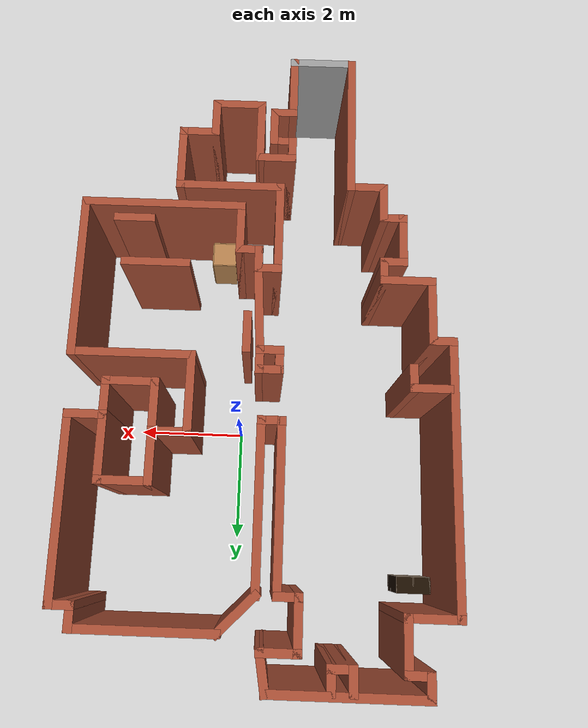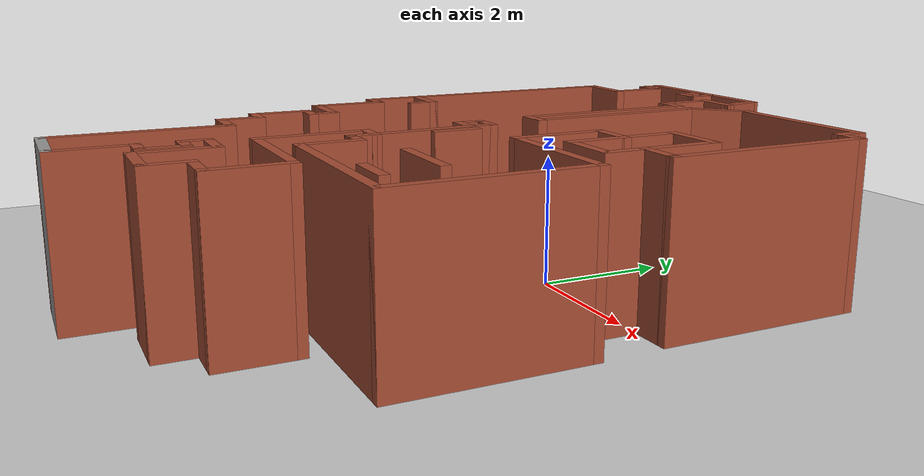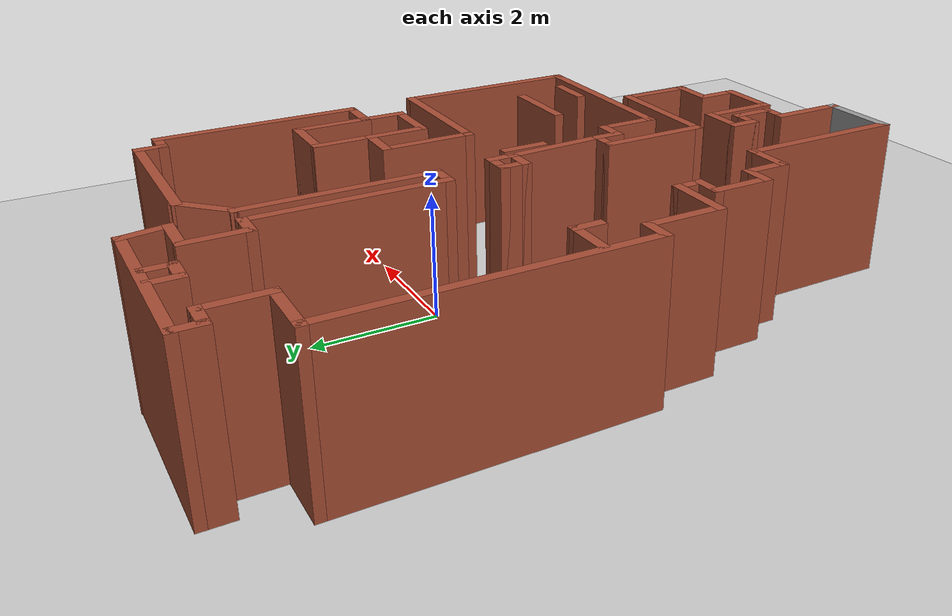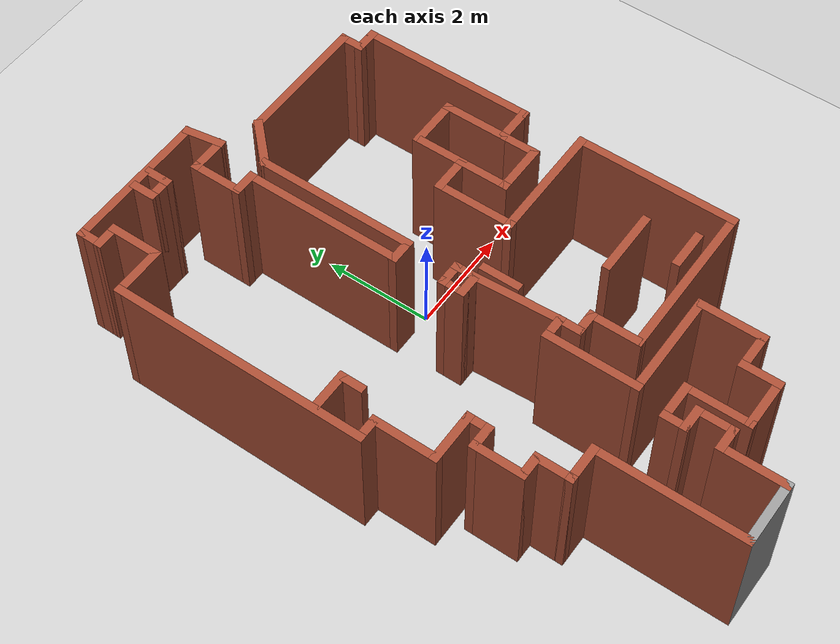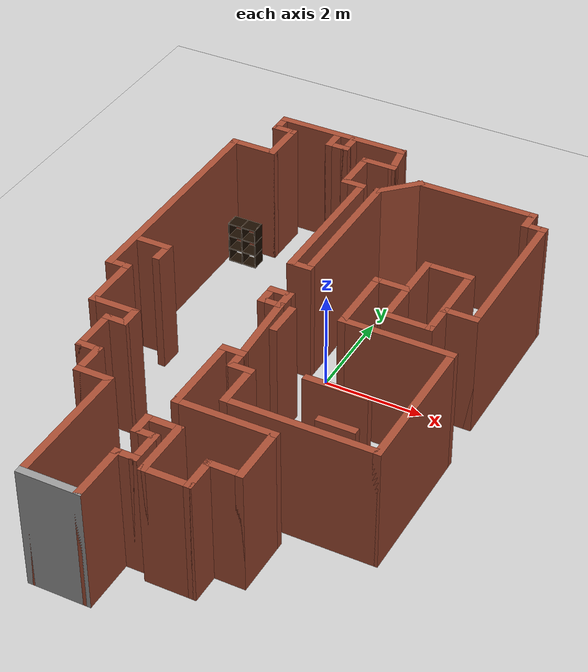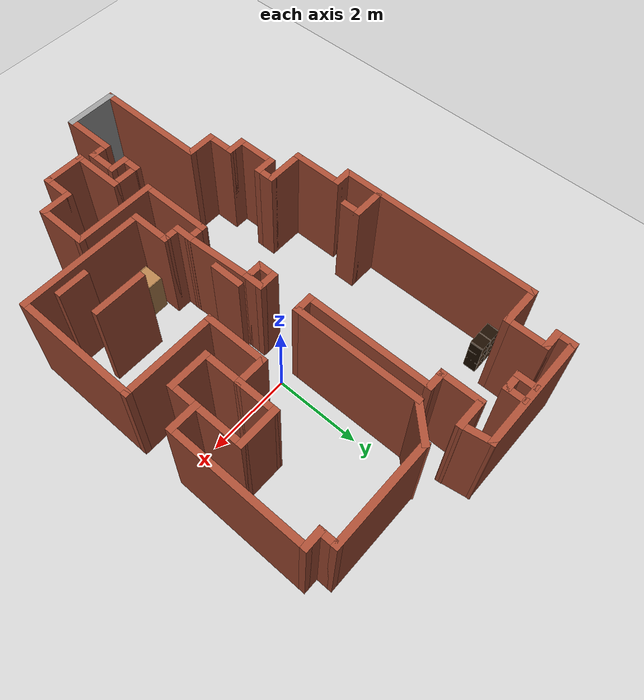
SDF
<sdf version="1.6">
 <world name="default">
  <light name="sun" type="directional">
   <pose>0 0 10 0 -0 0</pose>
   <diffuse>0.8 0.8 0.8 1</diffuse>
   <specular>0.2 0.2 0.2 1</specular>
   <attenuation>
    <range>1000</range>
    <constant>0.9</constant>
    <linear>0.01</linear>
    <quadratic>0.001</quadratic>
   </attenuation>
   <direction>-0.5 0.1 -0.9</direction>
  </light>
  <model name="ground_plane">
   <static>1</static>
   <link name="link">
    <collision name="collision">
     <geometry><plane><normal>0 0 1</normal><size>100 100</size></plane></geometry>
     <surface>
      <contact><collide_bitmask>65535</collide_bitmask></contact>
      <friction><ode><mu>100</mu><mu2>50</mu2></ode></friction>
     </surface>
    </collision>
    <visual name="visual">
     <cast_shadows>0</cast_shadows>
     <geometry><plane><normal>0 0 1</normal><size>100 100</size></plane></geometry>
     <material>
      <script><uri>file://media/materials/scripts/gazebo.material</uri><name>Gazebo/Grey</name></script>
     </material>
    </visual>
   </link>
  </model>
  <gravity>0 0 -9.8</gravity>
  <magnetic_field>6e-06 2.3e-05 -4.2e-05</magnetic_field>
  <atmosphere type="adiabatic"/>
  <physics name="default_physics" default="0" type="ode">
   <max_step_size>0.001</max_step_size>
   <real_time_factor>1</real_time_factor>
   <real_time_update_rate>1000</real_time_update_rate>
  </physics>
  <scene><ambient>0.4 0.4 0.4 1</ambient><background>0.7 0.7 0.7 1</background><shadows>1</shadows></scene>
  <audio><device>default</device></audio>
  <spherical_coordinates>
   <surface_model>EARTH_WGS84</surface_model>
   <latitude_deg>0</latitude_deg>
   <longitude_deg>0</longitude_deg>
   <elevation>0</elevation>
   <heading_deg>0</heading_deg>
  </spherical_coordinates>
  <model name="map_38">
   <pose>-0.37762 -1.26355 0 0 -0 0</pose>
   <link name="Wall_0">
    <collision name="Wall_0_Collision">
     <geometry><box><size>2.75 0.15 2.5</size></box></geometry>
     <pose>0 0 1.25 0 -0 0</pose>
    </collision>
    <visual name="Wall_0_Visual">
     <pose>0 0 1.25 0 -0 0</pose>
     <geometry><box><size>2.75 0.15 2.5</size></box></geometry>
     <material>
      <script><uri>file://media/materials/scripts/gazebo.material</uri><name>Gazebo/Bricks</name></script>
      <ambient>1 1 1 1</ambient>
     </material>
     <meta><layer>0</layer></meta>
    </visual>
    <pose>-1.525 5.64441 0 0 -0 3.14159</pose>
   </link>
   <link name="Wall_1">
    <collision name="Wall_1_Collision">
     <geometry><box><size>0.5 0.15 2.5</size></box></geometry>
     <pose>0 0 1.25 0 -0 0</pose>
    </collision>
    <visual name="Wall_1_Visual">
     <pose>0 0 1.25 0 -0 0</pose>
     <geometry><box><size>0.5 0.15 2.5</size></box></geometry>
     <material>
      <script><uri>file://media/materials/scripts/gazebo.material</uri><name>Gazebo/Bricks</name></script>
      <ambient>1 1 1 1</ambient>
     </material>
     <meta><layer>0</layer></meta>
    </visual>
    <pose>-2.825 5.46941 0 0 -0 -1.5708</pose>
   </link>
   <link name="Wall_10">
    <collision name="Wall_10_Collision">
     <geometry><box><size>0.5 0.15 2.5</size></box></geometry>
     <pose>0 0 1.25 0 -0 0</pose>
    </collision>
    <visual name="Wall_10_Visual">
     <pose>0 0 1.25 0 -0 0</pose>
     <geometry><box><size>0.5 0.15 2.5</size></box></geometry>
     <material>
      <script><uri>file://media/materials/scripts/gazebo.material</uri><name>Gazebo/Bricks</name></script>
      <ambient>1 1 1 1</ambient>
     </material>
     <meta><layer>0</layer></meta>
    </visual>
    <pose>-2.3 -1.60559 0 0 -0 3.14159</pose>
   </link>
   <link name="Wall_11">
    <collision name="Wall_11_Collision">
     <geometry><box><size>1 0.15 2.5</size></box></geometry>
     <pose>0 0 1.25 0 -0 0</pose>
    </collision>
    <visual name="Wall_11_Visual">
     <pose>0 0 1.25 0 -0 0</pose>
     <geometry><box><size>1 0.15 2.5</size></box></geometry>
     <material>
      <script><uri>file://media/materials/scripts/gazebo.material</uri><name>Gazebo/Bricks</name></script>
      <ambient>1 1 1 1</ambient>
     </material>
     <meta><layer>0</layer></meta>
    </visual>
    <pose>-2.475 -2.03059 0 0 -0 -1.5708</pose>
   </link>
   <link name="Wall_12">
    <collision name="Wall_12_Collision">
     <geometry><box><size>0.5 0.15 2.5</size></box></geometry>
     <pose>0 0 1.25 0 -0 0</pose>
    </collision>
    <visual name="Wall_12_Visual">
     <pose>0 0 1.25 0 -0 0</pose>
     <geometry><box><size>0.5 0.15 2.5</size></box></geometry>
     <material>
      <script><uri>file://media/materials/scripts/gazebo.material</uri><name>Gazebo/Bricks</name></script>
      <ambient>1 1 1 1</ambient>
     </material>
     <meta><layer>0</layer></meta>
    </visual>
    <pose>-2.3 -2.45559 0 0 -0 0</pose>
   </link>
   <link name="Wall_13">
    <collision name="Wall_13_Collision">
     <geometry><box><size>0.75 0.15 2.5</size></box></geometry>
     <pose>0 0 1.25 0 -0 0</pose>
    </collision>
    <visual name="Wall_13_Visual">
     <pose>0 0 1.25 0 -0 0</pose>
     <geometry><box><size>0.75 0.15 2.5</size></box></geometry>
     <material>
      <script><uri>file://media/materials/scripts/gazebo.material</uri><name>Gazebo/Bricks</name></script>
      <ambient>1 1 1 1</ambient>
     </material>
     <meta><layer>0</layer></meta>
    </visual>
    <pose>-2.125 -2.75559 0 0 -0 -1.5708</pose>
   </link>
   <link name="Wall_16">
    <collision name="Wall_16_Collision">
     <geometry><box><size>0.75 0.15 2.5</size></box></geometry>
     <pose>0 0 1.25 0 -0 0</pose>
    </collision>
    <visual name="Wall_16_Visual">
     <pose>0 0 1.25 0 -0 0</pose>
     <geometry><box><size>0.75 0.15 2.5</size></box></geometry>
     <material>
      <script><uri>file://media/materials/scripts/gazebo.material</uri><name>Gazebo/Bricks</name></script>
      <ambient>1 1 1 1</ambient>
     </material>
     <meta><layer>0</layer></meta>
    </visual>
    <pose>-1.825 -3.05559 0 0 -0 0</pose>
   </link>
   <link name="Wall_17">
    <collision name="Wall_17_Collision">
     <geometry><box><size>2.75 0.15 2.5</size></box></geometry>
     <pose>0 0 1.25 0 -0 0</pose>
    </collision>
    <visual name="Wall_17_Visual">
     <pose>0 0 1.25 0 -0 0</pose>
     <geometry><box><size>2.75 0.15 2.5</size></box></geometry>
     <material>
      <script><uri>file://media/materials/scripts/gazebo.material</uri><name>Gazebo/Bricks</name></script>
      <ambient>1 1 1 1</ambient>
     </material>
     <meta><layer>0</layer></meta>
    </visual>
    <pose>-1.525 -4.35559 0 0 -0 -1.5708</pose>
   </link>
   <link name="Wall_2">
    <collision name="Wall_2_Collision">
     <geometry><box><size>0.5 0.15 2.5</size></box></geometry>
     <pose>0 0 1.25 0 -0 0</pose>
    </collision>
    <visual name="Wall_2_Visual">
     <pose>0 0 1.25 0 -0 0</pose>
     <geometry><box><size>0.5 0.15 2.5</size></box></geometry>
     <material>
      <script><uri>file://media/materials/scripts/gazebo.material</uri><name>Gazebo/Bricks</name></script>
      <ambient>1 1 1 1</ambient>
     </material>
     <meta><layer>0</layer></meta>
    </visual>
    <pose>-2.65 5.29441 0 0 -0 0</pose>
   </link>
   <link name="Wall_22">
    <collision name="Wall_22_Collision">
     <geometry><box><size>1.25 0.15 2.5</size></box></geometry>
     <pose>0 0 1.25 0 -0 0</pose>
    </collision>
    <visual name="Wall_22_Visual">
     <pose>0 0 1.25 0 -0 0</pose>
     <geometry><box><size>1.25 0.15 2.5</size></box></geometry>
     <material>
      <script><uri>file://media/materials/scripts/gazebo.material</uri><name>Gazebo/Grey</name></script>
      <ambient>1 1 1 1</ambient>
     </material>
     <meta><layer>0</layer></meta>
    </visual>
    <pose>-0.975 -5.65559 0 0 -0 0</pose>
   </link>
   <link name="Wall_23">
    <collision name="Wall_23_Collision">
     <geometry><box><size>1.25 0.15 2.5</size></box></geometry>
     <pose>0 0 1.25 0 -0 0</pose>
    </collision>
    <visual name="Wall_23_Visual">
     <pose>0 0 1.25 0 -0 0</pose>
     <geometry><box><size>1.25 0.15 2.5</size></box></geometry>
     <material>
      <script><uri>file://media/materials/scripts/gazebo.material</uri><name>Gazebo/Bricks</name></script>
      <ambient>1 1 1 1</ambient>
     </material>
     <meta><layer>0</layer></meta>
    </visual>
    <pose>-0.425 -5.10559 0 0 -0 1.5708</pose>
   </link>
   <link name="Wall_24">
    <collision name="Wall_24_Collision">
     <geometry><box><size>0.5 0.15 2.5</size></box></geometry>
     <pose>0 0 1.25 0 -0 0</pose>
    </collision>
    <visual name="Wall_24_Visual">
     <pose>0 0 1.25 0 -0 0</pose>
     <geometry><box><size>0.5 0.15 2.5</size></box></geometry>
     <material>
      <script><uri>file://media/materials/scripts/gazebo.material</uri><name>Gazebo/Bricks</name></script>
      <ambient>1 1 1 1</ambient>
     </material>
     <meta><layer>0</layer></meta>
    </visual>
    <pose>-0.25 -4.55559 0 0 -0 0</pose>
   </link>
   <link name="Wall_25">
    <collision name="Wall_25_Collision">
     <geometry><box><size>0.75 0.15 2.5</size></box></geometry>
     <pose>0 0 1.25 0 -0 0</pose>
    </collision>
    <visual name="Wall_25_Visual">
     <pose>0 0 1.25 0 -0 0</pose>
     <geometry><box><size>0.75 0.15 2.5</size></box></geometry>
     <material>
      <script><uri>file://media/materials/scripts/gazebo.material</uri><name>Gazebo/Bricks</name></script>
      <ambient>1 1 1 1</ambient>
     </material>
     <meta><layer>0</layer></meta>
    </visual>
    <pose>-0.075 -4.25559 0 0 -0 1.5708</pose>
   </link>
   <link name="Wall_26">
    <collision name="Wall_26_Collision">
     <geometry><box><size>0.5 0.15 2.5</size></box></geometry>
     <pose>0 0 1.25 0 -0 0</pose>
    </collision>
    <visual name="Wall_26_Visual">
     <pose>0 0 1.25 0 -0 0</pose>
     <geometry><box><size>0.5 0.15 2.5</size></box></geometry>
     <material>
      <script><uri>file://media/materials/scripts/gazebo.material</uri><name>Gazebo/Bricks</name></script>
      <ambient>1 1 1 1</ambient>
     </material>
     <meta><layer>0</layer></meta>
    </visual>
    <pose>-0.25 -3.95559 0 0 -0 3.14159</pose>
   </link>
   <link name="Wall_27">
    <collision name="Wall_27_Collision">
     <geometry><box><size>0.5 0.15 2.5</size></box></geometry>
     <pose>0 0 1.25 0 -0 0</pose>
    </collision>
    <visual name="Wall_27_Visual">
     <pose>0 0 1.25 0 -0 0</pose>
     <geometry><box><size>0.5 0.15 2.5</size></box></geometry>
     <material>
      <script><uri>file://media/materials/scripts/gazebo.material</uri><name>Gazebo/Bricks</name></script>
      <ambient>1 1 1 1</ambient>
     </material>
     <meta><layer>0</layer></meta>
    </visual>
    <pose>-0.425 -3.78059 0 0 -0 1.5708</pose>
   </link>
   <link name="Wall_28">
    <collision name="Wall_28_Collision">
     <geometry><box><size>0.75 0.15 2.5</size></box></geometry>
     <pose>0 0 1.25 0 -0 0</pose>
    </collision>
    <visual name="Wall_28_Visual">
     <pose>0 0 1.25 0 -0 0</pose>
     <geometry><box><size>0.75 0.15 2.5</size></box></geometry>
     <material>
      <script><uri>file://media/materials/scripts/gazebo.material</uri><name>Gazebo/Bricks</name></script>
      <ambient>1 1 1 1</ambient>
     </material>
     <meta><layer>0</layer></meta>
    </visual>
    <pose>-0.125 -3.60559 0 0 -0 0</pose>
   </link>
   <link name="Wall_29">
    <collision name="Wall_29_Collision">
     <geometry><box><size>1.25 0.15 2.5</size></box></geometry>
     <pose>0 0 1.25 0 -0 0</pose>
    </collision>
    <visual name="Wall_29_Visual">
     <pose>0 0 1.25 0 -0 0</pose>
     <geometry><box><size>1.25 0.15 2.5</size></box></geometry>
     <material>
      <script><uri>file://media/materials/scripts/gazebo.material</uri><name>Gazebo/Bricks</name></script>
      <ambient>1 1 1 1</ambient>
     </material>
     <meta><layer>0</layer></meta>
    </visual>
    <pose>0.175 -4.15559 0 0 -0 -1.5708</pose>
   </link>
   <link name="Wall_3">
    <collision name="Wall_3_Collision">
     <geometry><box><size>1 0.15 2.5</size></box></geometry>
     <pose>0 0 1.25 0 -0 0</pose>
    </collision>
    <visual name="Wall_3_Visual">
     <pose>0 0 1.25 0 -0 0</pose>
     <geometry><box><size>1 0.15 2.5</size></box></geometry>
     <material>
      <script><uri>file://media/materials/scripts/gazebo.material</uri><name>Gazebo/Bricks</name></script>
      <ambient>1 1 1 1</ambient>
     </material>
     <meta><layer>0</layer></meta>
    </visual>
    <pose>-2.475 4.86941 0 0 -0 -1.5708</pose>
   </link>
   <link name="Wall_30">
    <collision name="Wall_30_Collision">
     <geometry><box><size>1 0.15 2.5</size></box></geometry>
     <pose>0 0 1.25 0 -0 0</pose>
    </collision>
    <visual name="Wall_30_Visual">
     <pose>0 0 1.25 0 -0 0</pose>
     <geometry><box><size>1 0.15 2.5</size></box></geometry>
     <material>
      <script><uri>file://media/materials/scripts/gazebo.material</uri><name>Gazebo/Bricks</name></script>
      <ambient>1 1 1 1</ambient>
     </material>
     <meta><layer>0</layer></meta>
    </visual>
    <pose>0.6 -4.70559 0 0 -0 0</pose>
   </link>
   <link name="Wall_34">
    <collision name="Wall_34_Collision">
     <geometry><box><size>0.75 0.15 2.5</size></box></geometry>
     <pose>0 0 1.25 0 -0 0</pose>
    </collision>
    <visual name="Wall_34_Visual">
     <pose>0 0 1.25 0 -0 0</pose>
     <geometry><box><size>0.75 0.15 2.5</size></box></geometry>
     <material>
      <script><uri>file://media/materials/scripts/gazebo.material</uri><name>Gazebo/Bricks</name></script>
      <ambient>1 1 1 1</ambient>
     </material>
     <meta><layer>0</layer></meta>
    </visual>
    <pose>1.025 -4.40559 0 0 -0 1.5708</pose>
   </link>
   <link name="Wall_35">
    <collision name="Wall_35_Collision">
     <geometry><box><size>0.75 0.15 2.5</size></box></geometry>
     <pose>0 0 1.25 0 -0 0</pose>
    </collision>
    <visual name="Wall_35_Visual">
     <pose>0 0 1.25 0 -0 0</pose>
     <geometry><box><size>0.75 0.15 2.5</size></box></geometry>
     <material>
      <script><uri>file://media/materials/scripts/gazebo.material</uri><name>Gazebo/Bricks</name></script>
      <ambient>1 1 1 1</ambient>
     </material>
     <meta><layer>0</layer></meta>
    </visual>
    <pose>1.325 -4.10559 0 0 -0 0</pose>
   </link>
   <link name="Wall_36">
    <collision name="Wall_36_Collision">
     <geometry><box><size>1.25 0.15 2.5</size></box></geometry>
     <pose>0 0 1.25 0 -0 0</pose>
    </collision>
    <visual name="Wall_36_Visual">
     <pose>0 0 1.25 0 -0 0</pose>
     <geometry><box><size>1.25 0.15 2.5</size></box></geometry>
     <material>
      <script><uri>file://media/materials/scripts/gazebo.material</uri><name>Gazebo/Bricks</name></script>
      <ambient>1 1 1 1</ambient>
     </material>
     <meta><layer>0</layer></meta>
    </visual>
    <pose>1.625 -3.55559 0 0 -0 1.5708</pose>
   </link>
   <link name="Wall_37">
    <collision name="Wall_37_Collision">
     <geometry><box><size>2 0.15 2.5</size></box></geometry>
     <pose>0 0 1.25 0 -0 0</pose>
    </collision>
    <visual name="Wall_37_Visual">
     <pose>0 0 1.25 0 -0 0</pose>
     <geometry><box><size>2 0.15 2.5</size></box></geometry>
     <material>
      <script><uri>file://media/materials/scripts/gazebo.material</uri><name>Gazebo/Bricks</name></script>
      <ambient>1 1 1 1</ambient>
     </material>
     <meta><layer>0</layer></meta>
    </visual>
    <pose>0.7 -3.00559 0 0 -0 3.14159</pose>
   </link>
   <link name="Wall_38">
    <collision name="Wall_38_Collision">
     <geometry><box><size>1.75 0.15 2.5</size></box></geometry>
     <pose>0 0 1.25 0 -0 0</pose>
    </collision>
    <visual name="Wall_38_Visual">
     <pose>0 0 1.25 0 -0 0</pose>
     <geometry><box><size>1.75 0.15 2.5</size></box></geometry>
     <material>
      <script><uri>file://media/materials/scripts/gazebo.material</uri><name>Gazebo/Bricks</name></script>
      <ambient>1 1 1 1</ambient>
     </material>
     <meta><layer>0</layer></meta>
    </visual>
    <pose>-0.225 -2.20559 0 0 -0 1.5708</pose>
   </link>
   <link name="Wall_39">
    <collision name="Wall_39_Collision">
     <geometry><box><size>0.5 0.15 2.5</size></box></geometry>
     <pose>0 0 1.25 0 -0 0</pose>
    </collision>
    <visual name="Wall_39_Visual">
     <pose>0 0 1.25 0 -0 0</pose>
     <geometry><box><size>0.5 0.15 2.5</size></box></geometry>
     <material>
      <script><uri>file://media/materials/scripts/gazebo.material</uri><name>Gazebo/Bricks</name></script>
      <ambient>1 1 1 1</ambient>
     </material>
     <meta><layer>0</layer></meta>
    </visual>
    <pose>-0.05 -1.40559 0 0 -0 0</pose>
   </link>
   <link name="Wall_4">
    <collision name="Wall_4_Collision">
     <geometry><box><size>1 0.15 2.5</size></box></geometry>
     <pose>0 0 1.25 0 -0 0</pose>
    </collision>
    <visual name="Wall_4_Visual">
     <pose>0 0 1.25 0 -0 0</pose>
     <geometry><box><size>1 0.15 2.5</size></box></geometry>
     <material>
      <script><uri>file://media/materials/scripts/gazebo.material</uri><name>Gazebo/Bricks</name></script>
      <ambient>1 1 1 1</ambient>
     </material>
     <meta><layer>0</layer></meta>
    </visual>
    <pose>-2.9 4.44441 0 0 -0 3.14159</pose>
   </link>
   <link name="Wall_40">
    <collision name="Wall_40_Collision">
     <geometry><box><size>0.5 0.15 2.5</size></box></geometry>
     <pose>0 0 1.25 0 -0 0</pose>
    </collision>
    <visual name="Wall_40_Visual">
     <pose>0 0 1.25 0 -0 0</pose>
     <geometry><box><size>0.5 0.15 2.5</size></box></geometry>
     <material>
      <script><uri>file://media/materials/scripts/gazebo.material</uri><name>Gazebo/Bricks</name></script>
      <ambient>1 1 1 1</ambient>
     </material>
     <meta><layer>0</layer></meta>
    </visual>
    <pose>0.125 -1.58059 0 0 -0 -1.5708</pose>
   </link>
   <link name="Wall_41">
    <collision name="Wall_41_Collision">
     <geometry><box><size>0.5 0.15 2.5</size></box></geometry>
     <pose>0 0 1.25 0 -0 0</pose>
    </collision>
    <visual name="Wall_41_Visual">
     <pose>0 0 1.25 0 -0 0</pose>
     <geometry><box><size>0.5 0.15 2.5</size></box></geometry>
     <material>
      <script><uri>file://media/materials/scripts/gazebo.material</uri><name>Gazebo/Bricks</name></script>
      <ambient>1 1 1 1</ambient>
     </material>
     <meta><layer>0</layer></meta>
    </visual>
    <pose>0.3 -1.75559 0 0 -0 0</pose>
   </link>
   <link name="Wall_42">
    <collision name="Wall_42_Collision">
     <geometry><box><size>1 0.15 2.5</size></box></geometry>
     <pose>0 0 1.25 0 -0 0</pose>
    </collision>
    <visual name="Wall_42_Visual">
     <pose>0 0 1.25 0 -0 0</pose>
     <geometry><box><size>1 0.15 2.5</size></box></geometry>
     <material>
      <script><uri>file://media/materials/scripts/gazebo.material</uri><name>Gazebo/Bricks</name></script>
      <ambient>1 1 1 1</ambient>
     </material>
     <meta><layer>0</layer></meta>
    </visual>
    <pose>0.475 -2.18059 0 0 -0 -1.5708</pose>
   </link>
   <link name="Wall_43">
    <collision name="Wall_43_Collision">
     <geometry><box><size>3 0.15 2.5</size></box></geometry>
     <pose>0 0 1.25 0 -0 0</pose>
    </collision>
    <visual name="Wall_43_Visual">
     <pose>0 0 1.25 0 -0 0</pose>
     <geometry><box><size>3 0.15 2.5</size></box></geometry>
     <material>
      <script><uri>file://media/materials/scripts/gazebo.material</uri><name>Gazebo/Bricks</name></script>
      <ambient>1 1 1 1</ambient>
     </material>
     <meta><layer>0</layer></meta>
    </visual>
    <pose>1.9 -2.60559 0 0 -0 0</pose>
   </link>
   <link name="Wall_44">
    <collision name="Wall_44_Collision">
     <geometry><box><size>3 0.15 2.5</size></box></geometry>
     <pose>0 0 1.25 0 -0 0</pose>
    </collision>
    <visual name="Wall_44_Visual">
     <pose>0 0 1.25 0 -0 0</pose>
     <geometry><box><size>3 0.15 2.5</size></box></geometry>
     <material>
      <script><uri>file://media/materials/scripts/gazebo.material</uri><name>Gazebo/Bricks</name></script>
      <ambient>1 1 1 1</ambient>
     </material>
     <meta><layer>0</layer></meta>
    </visual>
    <pose>3.325 -1.18059 0 0 -0 1.5708</pose>
   </link>
   <link name="Wall_45">
    <collision name="Wall_45_Collision">
     <geometry><box><size>2.25 0.15 2.5</size></box></geometry>
     <pose>0 0 1.25 0 -0 0</pose>
    </collision>
    <visual name="Wall_45_Visual">
     <pose>0 0 1.25 0 -0 0</pose>
     <geometry><box><size>2.25 0.15 2.5</size></box></geometry>
     <material>
      <script><uri>file://media/materials/scripts/gazebo.material</uri><name>Gazebo/Bricks</name></script>
      <ambient>1 1 1 1</ambient>
     </material>
     <meta><layer>0</layer></meta>
    </visual>
    <pose>2.275 0.244406 0 0 -0 3.14159</pose>
   </link>
   <link name="Wall_46">
    <collision name="Wall_46_Collision">
     <geometry><box><size>1.5 0.15 2.5</size></box></geometry>
     <pose>0 0 1.25 0 -0 0</pose>
    </collision>
    <visual name="Wall_46_Visual">
     <pose>0 0 1.25 0 -0 0</pose>
     <geometry><box><size>1.5 0.15 2.5</size></box></geometry>
     <material>
      <script><uri>file://media/materials/scripts/gazebo.material</uri><name>Gazebo/Bricks</name></script>
      <ambient>1 1 1 1</ambient>
     </material>
     <meta><layer>0</layer></meta>
    </visual>
    <pose>1.225 0.919406 0 0 -0 1.5708</pose>
   </link>
   <link name="Wall_47">
    <collision name="Wall_47_Collision">
     <geometry><box><size>0.75 0.15 2.5</size></box></geometry>
     <pose>0 0 1.25 0 -0 0</pose>
    </collision>
    <visual name="Wall_47_Visual">
     <pose>0 0 1.25 0 -0 0</pose>
     <geometry><box><size>0.75 0.15 2.5</size></box></geometry>
     <material>
      <script><uri>file://media/materials/scripts/gazebo.material</uri><name>Gazebo/Bricks</name></script>
      <ambient>1 1 1 1</ambient>
     </material>
     <meta><layer>0</layer></meta>
    </visual>
    <pose>1.525 1.59441 0 0 -0 0</pose>
   </link>
   <link name="Wall_48">
    <collision name="Wall_48_Collision">
     <geometry><box><size>1 0.15 2.5</size></box></geometry>
     <pose>0 0 1.25 0 -0 0</pose>
    </collision>
    <visual name="Wall_48_Visual">
     <pose>0 0 1.25 0 -0 0</pose>
     <geometry><box><size>1 0.15 2.5</size></box></geometry>
     <material>
      <script><uri>file://media/materials/scripts/gazebo.material</uri><name>Gazebo/Bricks</name></script>
      <ambient>1 1 1 1</ambient>
     </material>
     <meta><layer>0</layer></meta>
    </visual>
    <pose>1.825 1.16941 0 0 -0 -1.5708</pose>
   </link>
   <link name="Wall_49">
    <collision name="Wall_49_Collision">
     <geometry><box><size>1 0.15 2.5</size></box></geometry>
     <pose>0 0 1.25 0 -0 0</pose>
    </collision>
    <visual name="Wall_49_Visual">
     <pose>0 0 1.25 0 -0 0</pose>
     <geometry><box><size>1 0.15 2.5</size></box></geometry>
     <material>
      <script><uri>file://media/materials/scripts/gazebo.material</uri><name>Gazebo/Bricks</name></script>
      <ambient>1 1 1 1</ambient>
     </material>
     <meta><layer>0</layer></meta>
    </visual>
    <pose>2.25 0.744406 0 0 -0 0</pose>
   </link>
   <link name="Wall_5">
    <collision name="Wall_5_Collision">
     <geometry><box><size>4.75 0.15 2.5</size></box></geometry>
     <pose>0 0 1.25 0 -0 0</pose>
    </collision>
    <visual name="Wall_5_Visual">
     <pose>0 0 1.25 0 -0 0</pose>
     <geometry><box><size>4.75 0.15 2.5</size></box></geometry>
     <material>
      <script><uri>file://media/materials/scripts/gazebo.material</uri><name>Gazebo/Bricks</name></script>
      <ambient>1 1 1 1</ambient>
     </material>
     <meta><layer>0</layer></meta>
    </visual>
    <pose>-3.325 2.14441 0 0 -0 -1.5708</pose>
   </link>
   <link name="Wall_50">
    <collision name="Wall_50_Collision">
     <geometry><box><size>0.75 0.15 2.5</size></box></geometry>
     <pose>0 0 1.25 0 -0 0</pose>
    </collision>
    <visual name="Wall_50_Visual">
     <pose>0 0 1.25 0 -0 0</pose>
     <geometry><box><size>0.75 0.15 2.5</size></box></geometry>
     <material>
      <script><uri>file://media/materials/scripts/gazebo.material</uri><name>Gazebo/Bricks</name></script>
      <ambient>1 1 1 1</ambient>
     </material>
     <meta><layer>0</layer></meta>
    </visual>
    <pose>2.675 1.04441 0 0 -0 1.5708</pose>
   </link>
   <link name="Wall_51">
    <collision name="Wall_51_Collision">
     <geometry><box><size>0.75 0.15 2.5</size></box></geometry>
     <pose>0 0 1.25 0 -0 0</pose>
    </collision>
    <visual name="Wall_51_Visual">
     <pose>0 0 1.25 0 -0 0</pose>
     <geometry><box><size>0.75 0.15 2.5</size></box></geometry>
     <material>
      <script><uri>file://media/materials/scripts/gazebo.material</uri><name>Gazebo/Bricks</name></script>
      <ambient>1 1 1 1</ambient>
     </material>
     <meta><layer>0</layer></meta>
    </visual>
    <pose>2.975 1.34441 0 0 -0 0</pose>
   </link>
   <link name="Wall_52">
    <collision name="Wall_52_Collision">
     <geometry><box><size>3.25 0.15 2.5</size></box></geometry>
     <pose>0 0 1.25 0 -0 0</pose>
    </collision>
    <visual name="Wall_52_Visual">
     <pose>0 0 1.25 0 -0 0</pose>
     <geometry><box><size>3.25 0.15 2.5</size></box></geometry>
     <material>
      <script><uri>file://media/materials/scripts/gazebo.material</uri><name>Gazebo/Bricks</name></script>
      <ambient>1 1 1 1</ambient>
     </material>
     <meta><layer>0</layer></meta>
    </visual>
    <pose>3.275 2.89441 0 0 -0 1.5708</pose>
   </link>
   <link name="Wall_53">
    <collision name="Wall_53_Collision">
     <geometry><box><size>0.5 0.15 2.5</size></box></geometry>
     <pose>0 0 1.25 0 -0 0</pose>
    </collision>
    <visual name="Wall_53_Visual">
     <pose>0 0 1.25 0 -0 0</pose>
     <geometry><box><size>0.5 0.15 2.5</size></box></geometry>
     <material>
      <script><uri>file://media/materials/scripts/gazebo.material</uri><name>Gazebo/Bricks</name></script>
      <ambient>1 1 1 1</ambient>
     </material>
     <meta><layer>0</layer></meta>
    </visual>
    <pose>3.1 4.44441 0 0 -0 3.14159</pose>
   </link>
   <link name="Wall_54">
    <collision name="Wall_54_Collision">
     <geometry><box><size>0.5 0.15 2.5</size></box></geometry>
     <pose>0 0 1.25 0 -0 0</pose>
    </collision>
    <visual name="Wall_54_Visual">
     <pose>0 0 1.25 0 -0 0</pose>
     <geometry><box><size>0.5 0.15 2.5</size></box></geometry>
     <material>
      <script><uri>file://media/materials/scripts/gazebo.material</uri><name>Gazebo/Bricks</name></script>
      <ambient>1 1 1 1</ambient>
     </material>
     <meta><layer>0</layer></meta>
    </visual>
    <pose>2.925 4.61941 0 0 -0 1.5708</pose>
   </link>
   <link name="Wall_55">
    <collision name="Wall_55_Collision">
     <geometry><box><size>2.5 0.15 2.5</size></box></geometry>
     <pose>0 0 1.25 0 -0 0</pose>
    </collision>
    <visual name="Wall_55_Visual">
     <pose>0 0 1.25 0 -0 0</pose>
     <geometry><box><size>2.5 0.15 2.5</size></box></geometry>
     <material>
      <script><uri>file://media/materials/scripts/gazebo.material</uri><name>Gazebo/Bricks</name></script>
      <ambient>1 1 1 1</ambient>
     </material>
     <meta><layer>0</layer></meta>
    </visual>
    <pose>1.75 4.79441 0 0 -0 3.14159</pose>
   </link>
   <link name="Wall_56">
    <collision name="Wall_56_Collision">
     <geometry><box><size>1 0.15 2.5</size></box></geometry>
     <pose>0 0 1.25 0 -0 0</pose>
    </collision>
    <visual name="Wall_56_Visual">
     <pose>0 0 1.25 0 -0 0</pose>
     <geometry><box><size>1 0.15 2.5</size></box></geometry>
     <material>
      <script><uri>file://media/materials/scripts/gazebo.material</uri><name>Gazebo/Bricks</name></script>
      <ambient>1 1 1 1</ambient>
     </material>
     <meta><layer>0</layer></meta>
    </visual>
    <pose>0.27448 4.49389 0 0 -0 -2.35619</pose>
   </link>
   <link name="Wall_57">
    <collision name="Wall_57_Collision">
     <geometry><box><size>3 0.15 2.5</size></box></geometry>
     <pose>0 0 1.25 0 -0 0</pose>
    </collision>
    <visual name="Wall_57_Visual">
     <pose>0 0 1.25 0 -0 0</pose>
     <geometry><box><size>3 0.15 2.5</size></box></geometry>
     <material>
      <script><uri>file://media/materials/scripts/gazebo.material</uri><name>Gazebo/Bricks</name></script>
      <ambient>1 1 1 1</ambient>
     </material>
     <meta><layer>0</layer></meta>
    </visual>
    <pose>-0.026041 2.76837 0 0 -0 -1.5708</pose>
   </link>
   <link name="Wall_58">
    <collision name="Wall_58_Collision">
     <geometry><box><size>0.5 0.15 2.5</size></box></geometry>
     <pose>0 0 1.25 0 -0 0</pose>
    </collision>
    <visual name="Wall_58_Visual">
     <pose>0 0 1.25 0 -0 0</pose>
     <geometry><box><size>0.5 0.15 2.5</size></box></geometry>
     <material>
      <script><uri>file://media/materials/scripts/gazebo.material</uri><name>Gazebo/Bricks</name></script>
      <ambient>1 1 1 1</ambient>
     </material>
     <meta><layer>0</layer></meta>
    </visual>
    <pose>-0.201041 1.34336 0 0 -0 3.14159</pose>
   </link>
   <link name="Wall_59">
    <collision name="Wall_59_Collision">
     <geometry><box><size>3 0.15 2.5</size></box></geometry>
     <pose>0 0 1.25 0 -0 0</pose>
    </collision>
    <visual name="Wall_59_Visual">
     <pose>0 0 1.25 0 -0 0</pose>
     <geometry><box><size>3 0.15 2.5</size></box></geometry>
     <material>
      <script><uri>file://media/materials/scripts/gazebo.material</uri><name>Gazebo/Bricks</name></script>
      <ambient>1 1 1 1</ambient>
     </material>
     <meta><layer>0</layer></meta>
    </visual>
    <pose>-0.376041 2.76837 0 0 -0 1.5708</pose>
   </link>
   <link name="Wall_6">
    <collision name="Wall_6_Collision">
     <geometry><box><size>0.5 0.15 2.5</size></box></geometry>
     <pose>0 0 1.25 0 -0 0</pose>
    </collision>
    <visual name="Wall_6_Visual">
     <pose>0 0 1.25 0 -0 0</pose>
     <geometry><box><size>0.5 0.15 2.5</size></box></geometry>
     <material>
      <script><uri>file://media/materials/scripts/gazebo.material</uri><name>Gazebo/Bricks</name></script>
      <ambient>1 1 1 1</ambient>
     </material>
     <meta><layer>0</layer></meta>
    </visual>
    <pose>-3.15 -0.155594 0 0 -0 0</pose>
   </link>
   <link name="Wall_60">
    <collision name="Wall_60_Collision">
     <geometry><box><size>0.5 0.15 2.5</size></box></geometry>
     <pose>0 0 1.25 0 -0 0</pose>
    </collision>
    <visual name="Wall_60_Visual">
     <pose>0 0 1.25 0 -0 0</pose>
     <geometry><box><size>0.5 0.15 2.5</size></box></geometry>
     <material>
      <script><uri>file://media/materials/scripts/gazebo.material</uri><name>Gazebo/Bricks</name></script>
      <ambient>1 1 1 1</ambient>
     </material>
     <meta><layer>0</layer></meta>
    </visual>
    <pose>-0.551041 4.19337 0 0 -0 3.14159</pose>
   </link>
   <link name="Wall_61">
    <collision name="Wall_61_Collision">
     <geometry><box><size>1 0.15 2.5</size></box></geometry>
     <pose>0 0 1.25 0 -0 0</pose>
    </collision>
    <visual name="Wall_61_Visual">
     <pose>0 0 1.25 0 -0 0</pose>
     <geometry><box><size>1 0.15 2.5</size></box></geometry>
     <material>
      <script><uri>file://media/materials/scripts/gazebo.material</uri><name>Gazebo/Bricks</name></script>
      <ambient>1 1 1 1</ambient>
     </material>
     <meta><layer>0</layer></meta>
    </visual>
    <pose>-0.726041 4.61836 0 0 -0 1.5708</pose>
   </link>
   <link name="Wall_62">
    <collision name="Wall_62_Collision">
     <geometry><box><size>0.75 0.15 2.5</size></box></geometry>
     <pose>0 0 1.25 0 -0 0</pose>
    </collision>
    <visual name="Wall_62_Visual">
     <pose>0 0 1.25 0 -0 0</pose>
     <geometry><box><size>0.75 0.15 2.5</size></box></geometry>
     <material>
      <script><uri>file://media/materials/scripts/gazebo.material</uri><name>Gazebo/Bricks</name></script>
      <ambient>1 1 1 1</ambient>
     </material>
     <meta><layer>0</layer></meta>
    </visual>
    <pose>-0.426041 5.04336 0 0 -0 0</pose>
   </link>
   <link name="Wall_63">
    <collision name="Wall_63_Collision">
     <geometry><box><size>0.759133 0.15 2.5</size></box></geometry>
     <pose>0 0 1.25 0 -0 0</pose>
    </collision>
    <visual name="Wall_63_Visual">
     <pose>0 0 1.25 0 -0 0</pose>
     <geometry><box><size>0.759133 0.15 2.5</size></box></geometry>
     <material>
      <script><uri>file://media/materials/scripts/gazebo.material</uri><name>Gazebo/Bricks</name></script>
      <ambient>1 1 1 1</ambient>
     </material>
     <meta><layer>0</layer></meta>
    </visual>
    <pose>-0.17552 5.34389 0 0 -0 1.73398</pose>
   </link>
   <link name="Wall_65">
    <collision name="Wall_65_Collision">
     <geometry><box><size>1 0.15 2.5</size></box></geometry>
     <pose>0 0 1.25 0 -0 0</pose>
    </collision>
    <visual name="Wall_65_Visual">
     <pose>0 0 1.25 0 -0 0</pose>
     <geometry><box><size>1 0.15 2.5</size></box></geometry>
     <material>
      <script><uri>file://media/materials/scripts/gazebo.material</uri><name>Gazebo/Bricks</name></script>
      <ambient>1 1 1 1</ambient>
     </material>
     <meta><layer>0</layer></meta>
    </visual>
    <pose>1.825 2.01941 0 0 -0 1.5708</pose>
   </link>
   <link name="Wall_66">
    <collision name="Wall_66_Collision">
     <geometry><box><size>1 0.15 2.5</size></box></geometry>
     <pose>0 0 1.25 0 -0 0</pose>
    </collision>
    <visual name="Wall_66_Visual">
     <pose>0 0 1.25 0 -0 0</pose>
     <geometry><box><size>1 0.15 2.5</size></box></geometry>
     <material>
      <script><uri>file://media/materials/scripts/gazebo.material</uri><name>Gazebo/Bricks</name></script>
      <ambient>1 1 1 1</ambient>
     </material>
     <meta><layer>0</layer></meta>
    </visual>
    <pose>2.25 2.44441 0 0 -0 0</pose>
   </link>
   <link name="Wall_67">
    <collision name="Wall_67_Collision">
     <geometry><box><size>1.25 0.15 2.5</size></box></geometry>
     <pose>0 0 1.25 0 -0 0</pose>
    </collision>
    <visual name="Wall_67_Visual">
     <pose>0 0 1.25 0 -0 0</pose>
     <geometry><box><size>1.25 0.15 2.5</size></box></geometry>
     <material>
      <script><uri>file://media/materials/scripts/gazebo.material</uri><name>Gazebo/Bricks</name></script>
      <ambient>1 1 1 1</ambient>
     </material>
     <meta><layer>0</layer></meta>
    </visual>
    <pose>2.675 1.89441 0 0 -0 -1.5708</pose>
   </link>
   <link name="Wall_69">
    <collision name="Wall_69_Collision">
     <geometry><box><size>1.25 0.15 2.5</size></box></geometry>
     <pose>0 0 1.25 0 -0 0</pose>
    </collision>
    <visual name="Wall_69_Visual">
     <pose>0 0 1.25 0 -0 0</pose>
     <geometry><box><size>1.25 0.15 2.5</size></box></geometry>
     <material>
      <script><uri>file://media/materials/scripts/gazebo.material</uri><name>Gazebo/Bricks</name></script>
      <ambient>1 1 1 1</ambient>
     </material>
     <meta><layer>0</layer></meta>
    </visual>
    <pose>1.97421 -1.45785 0 0 -0 0</pose>
   </link>
   <link name="Wall_7">
    <collision name="Wall_7_Collision">
     <geometry><box><size>1.25 0.15 2.5</size></box></geometry>
     <pose>0 0 1.25 0 -0 0</pose>
    </collision>
    <visual name="Wall_7_Visual">
     <pose>0 0 1.25 0 -0 0</pose>
     <geometry><box><size>1.25 0.15 2.5</size></box></geometry>
     <material>
      <script><uri>file://media/materials/scripts/gazebo.material</uri><name>Gazebo/Bricks</name></script>
      <ambient>1 1 1 1</ambient>
     </material>
     <meta><layer>0</layer></meta>
    </visual>
    <pose>-2.975 -0.705594 0 0 -0 -1.5708</pose>
   </link>
   <link name="Wall_71">
    <collision name="Wall_71_Collision">
     <geometry><box><size>0.75 0.15 2.5</size></box></geometry>
     <pose>0 0 1.25 0 -0 0</pose>
    </collision>
    <visual name="Wall_71_Visual">
     <pose>0 0 1.25 0 -0 0</pose>
     <geometry><box><size>0.75 0.15 2.5</size></box></geometry>
     <material>
      <script><uri>file://media/materials/scripts/gazebo.material</uri><name>Gazebo/Bricks</name></script>
      <ambient>1 1 1 1</ambient>
     </material>
     <meta><layer>0</layer></meta>
    </visual>
    <pose>2.41582 -2.30905 0 0 -0 0</pose>
   </link>
   <link name="Wall_73">
    <collision name="Wall_73_Collision">
     <geometry><box><size>0.75 0.15 2.5</size></box></geometry>
     <pose>0 0 1.25 0 -0 0</pose>
    </collision>
    <visual name="Wall_73_Visual">
     <pose>0 0 1.25 0 -0 0</pose>
     <geometry><box><size>0.75 0.15 2.5</size></box></geometry>
     <material>
      <script><uri>file://media/materials/scripts/gazebo.material</uri><name>Gazebo/Bricks</name></script>
      <ambient>1 1 1 1</ambient>
     </material>
     <meta><layer>0</layer></meta>
    </visual>
    <pose>-2.93082 0.696769 0 0 -0 0</pose>
   </link>
   <link name="Wall_74">
    <collision name="Wall_74_Collision">
     <geometry><box><size>0.5 0.15 2.5</size></box></geometry>
     <pose>0 0 1.25 0 -0 0</pose>
    </collision>
    <visual name="Wall_74_Visual">
     <pose>0 0 1.25 0 -0 0</pose>
     <geometry><box><size>0.5 0.15 2.5</size></box></geometry>
     <material>
      <script><uri>file://media/materials/scripts/gazebo.material</uri><name>Gazebo/Bricks</name></script>
      <ambient>1 1 1 1</ambient>
     </material>
     <meta><layer>0</layer></meta>
    </visual>
    <pose>-2.63082 0.521769 0 0 -0 -1.5708</pose>
   </link>
   <link name="Wall_76">
    <collision name="Wall_76_Collision">
     <geometry><box><size>0.5 0.15 2.5</size></box></geometry>
     <pose>0 0 1.25 0 -0 0</pose>
    </collision>
    <visual name="Wall_76_Visual">
     <pose>0 0 1.25 0 -0 0</pose>
     <geometry><box><size>0.5 0.15 2.5</size></box></geometry>
     <material>
      <script><uri>file://media/materials/scripts/gazebo.material</uri><name>Gazebo/Bricks</name></script>
      <ambient>1 1 1 1</ambient>
     </material>
     <meta><layer>0</layer></meta>
    </visual>
    <pose>-1.60821 5.41621 0 0 -0 -1.5708</pose>
   </link>
   <link name="Wall_77">
    <collision name="Wall_77_Collision">
     <geometry><box><size>0.5 0.15 2.5</size></box></geometry>
     <pose>0 0 1.25 0 -0 0</pose>
    </collision>
    <visual name="Wall_77_Visual">
     <pose>0 0 1.25 0 -0 0</pose>
     <geometry><box><size>0.5 0.15 2.5</size></box></geometry>
     <material>
      <script><uri>file://media/materials/scripts/gazebo.material</uri><name>Gazebo/Bricks</name></script>
      <ambient>1 1 1 1</ambient>
     </material>
     <meta><layer>0</layer></meta>
    </visual>
    <pose>-1.43321 5.24121 0 0 -0 0</pose>
   </link>
   <link name="Wall_78">
    <collision name="Wall_78_Collision">
     <geometry><box><size>0.5 0.15 2.5</size></box></geometry>
     <pose>0 0 1.25 0 -0 0</pose>
    </collision>
    <visual name="Wall_78_Visual">
     <pose>0 0 1.25 0 -0 0</pose>
     <geometry><box><size>0.5 0.15 2.5</size></box></geometry>
     <material>
      <script><uri>file://media/materials/scripts/gazebo.material</uri><name>Gazebo/Bricks</name></script>
      <ambient>1 1 1 1</ambient>
     </material>
     <meta><layer>0</layer></meta>
    </visual>
    <pose>-1.25821 5.41621 0 0 -0 1.5708</pose>
   </link>
   <link name="Wall_8">
    <collision name="Wall_8_Collision">
     <geometry><box><size>1 0.15 2.5</size></box></geometry>
     <pose>0 0 1.25 0 -0 0</pose>
    </collision>
    <visual name="Wall_8_Visual">
     <pose>0 0 1.25 0 -0 0</pose>
     <geometry><box><size>1 0.15 2.5</size></box></geometry>
     <material>
      <script><uri>file://media/materials/scripts/gazebo.material</uri><name>Gazebo/Bricks</name></script>
      <ambient>1 1 1 1</ambient>
     </material>
     <meta><layer>0</layer></meta>
    </visual>
    <pose>-2.55 -1.25559 0 0 -0 0</pose>
   </link>
   <link name="Wall_80">
    <collision name="Wall_80_Collision">
     <geometry><box><size>0.5 0.15 2.5</size></box></geometry>
     <pose>0 0 1.25 0 -0 0</pose>
    </collision>
    <visual name="Wall_80_Visual">
     <pose>0 0 1.25 0 -0 0</pose>
     <geometry><box><size>0.5 0.15 2.5</size></box></geometry>
     <material>
      <script><uri>file://media/materials/scripts/gazebo.material</uri><name>Gazebo/Bricks</name></script>
      <ambient>1 1 1 1</ambient>
     </material>
     <meta><layer>0</layer></meta>
    </visual>
    <pose>-0.304801 0.282367 0 0 -0 -1.5708</pose>
   </link>
   <link name="Wall_81">
    <collision name="Wall_81_Collision">
     <geometry><box><size>0.5 0.15 2.5</size></box></geometry>
     <pose>0 0 1.25 0 -0 0</pose>
    </collision>
    <visual name="Wall_81_Visual">
     <pose>0 0 1.25 0 -0 0</pose>
     <geometry><box><size>0.5 0.15 2.5</size></box></geometry>
     <material>
      <script><uri>file://media/materials/scripts/gazebo.material</uri><name>Gazebo/Bricks</name></script>
      <ambient>1 1 1 1</ambient>
     </material>
     <meta><layer>0</layer></meta>
    </visual>
    <pose>-0.129801 0.107367 0 0 -0 0</pose>
   </link>
   <link name="Wall_82">
    <collision name="Wall_82_Collision">
     <geometry><box><size>0.5 0.15 2.5</size></box></geometry>
     <pose>0 0 1.25 0 -0 0</pose>
    </collision>
    <visual name="Wall_82_Visual">
     <pose>0 0 1.25 0 -0 0</pose>
     <geometry><box><size>0.5 0.15 2.5</size></box></geometry>
     <material>
      <script><uri>file://media/materials/scripts/gazebo.material</uri><name>Gazebo/Bricks</name></script>
      <ambient>1 1 1 1</ambient>
     </material>
     <meta><layer>0</layer></meta>
    </visual>
    <pose>0.045199 0.282367 0 0 -0 1.5708</pose>
   </link>
   <link name="Wall_83">
    <collision name="Wall_83_Collision">
     <geometry><box><size>0.5 0.15 2.5</size></box></geometry>
     <pose>0 0 1.25 0 -0 0</pose>
    </collision>
    <visual name="Wall_83_Visual">
     <pose>0 0 1.25 0 -0 0</pose>
     <geometry><box><size>0.5 0.15 2.5</size></box></geometry>
     <material>
      <script><uri>file://media/materials/scripts/gazebo.material</uri><name>Gazebo/Bricks</name></script>
      <ambient>1 1 1 1</ambient>
     </material>
     <meta><layer>0</layer></meta>
    </visual>
    <pose>-0.129801 0.457367 0 0 -0 3.14159</pose>
   </link>
   <link name="Wall_85">
    <collision name="Wall_85_Collision">
     <geometry><box><size>1.66506 0.15 2.5</size></box></geometry>
     <pose>0 0 1.25 0 -0 0</pose>
    </collision>
    <visual name="Wall_85_Visual">
     <pose>0 0 1.25 0 -0 0</pose>
     <geometry><box><size>1.66506 0.15 2.5</size></box></geometry>
     <material>
      <script><uri>file://media/materials/scripts/gazebo.material</uri><name>Gazebo/Bricks</name></script>
      <ambient>1 1 1 1</ambient>
     </material>
     <meta><layer>0</layer></meta>
    </visual>
    <pose>0.0851 -0.649113 0 0 -0 -1.5181</pose>
   </link>
   <link name="Wall_87">
    <collision name="Wall_87_Collision">
     <geometry><box><size>0.75 0.15 2.5</size></box></geometry>
     <pose>0 0 1.25 0 -0 0</pose>
    </collision>
    <visual name="Wall_87_Visual">
     <pose>0 0 1.25 0 -0 0</pose>
     <geometry><box><size>0.75 0.15 2.5</size></box></geometry>
     <material>
      <script><uri>file://media/materials/scripts/gazebo.material</uri><name>Gazebo/Bricks</name></script>
      <ambient>1 1 1 1</ambient>
     </material>
     <meta><layer>0</layer></meta>
    </visual>
    <pose>0.280404 -0.215035 0 0 -0 -1.5708</pose>
   </link>
   <link name="Wall_9">
    <collision name="Wall_9_Collision">
     <geometry><box><size>0.5 0.15 2.5</size></box></geometry>
     <pose>0 0 1.25 0 -0 0</pose>
    </collision>
    <visual name="Wall_9_Visual">
     <pose>0 0 1.25 0 -0 0</pose>
     <geometry><box><size>0.5 0.15 2.5</size></box></geometry>
     <material>
      <script><uri>file://media/materials/scripts/gazebo.material</uri><name>Gazebo/Bricks</name></script>
      <ambient>1 1 1 1</ambient>
     </material>
     <meta><layer>0</layer></meta>
    </visual>
    <pose>-2.125 -1.43059 0 0 -0 -1.5708</pose>
   </link>
   <static>1</static>
  </model>
  <model name="6_Cube_StorageE">
   <link name="Wall_0">
    <pose>0 0 0.01 0 -0 0</pose>
    <inertial>
     <mass>1.6201</mass>
     <inertia><ixx>0.0119</ixx><iyy>0.0631</iyy><izz>0.0513</izz><ixy>0</ixy><ixz>0</ixz><iyz>0</iyz></inertia>
    </inertial>
    <collision name="Wall_0_Collision"><geometry><box><size>0.616 0.296 0.02</size></box></geometry></collision>
    <visual name="Wall_0_Visual">
     <geometry><box><size>0.616 0.296 0.02</size></box></geometry>
     <material>
      <script><uri>file://media/materials/scripts/gazebo.material</uri><name>Gazebo/Grey</name></script>
      <ambient>0.105882 0.0509804 0 1</ambient>
     </material>
    </visual>
   </link>
   <joint name="0_2" type="fixed">
    <pose>-0.308 0 0 0 -0 0</pose>
    <parent>Wall_2</parent>
    <child>Wall_0</child>
    <axis>
     <xyz>1 0 0</xyz>
     <use_parent_model_frame>0</use_parent_model_frame>
     <limit><lower>-1e+16</lower><upper>1e+16</upper></limit>
    </axis>
   </joint>
   <joint name="0_12" type="fixed">
    <parent>Wall_12</parent>
    <child>Wall_0</child>
    <axis>
     <xyz>0 0 1</xyz>
     <use_parent_model_frame>0</use_parent_model_frame>
     <limit><lower>-1e+16</lower><upper>1e+16</upper></limit>
    </axis>
   </joint>
   <joint name="0_4" type="fixed">
    <pose>0.308 0 0 0 -0 0</pose>
    <parent>Wall_4</parent>
    <child>Wall_0</child>
    <axis>
     <xyz>1 0 0</xyz>
     <use_parent_model_frame>0</use_parent_model_frame>
     <limit><lower>-1e+16</lower><upper>1e+16</upper></limit>
    </axis>
   </joint>
   <link name="Wall_10">
    <pose>0 0 0.61 0 -0 0</pose>
    <inertial>
     <mass>1.6201</mass>
     <inertia><ixx>0.0119</ixx><iyy>0.0631</iyy><izz>0.0513</izz><ixy>0</ixy><ixz>0</ixz><iyz>0</iyz></inertia>
    </inertial>
    <collision name="Wall_10_Collision"><geometry><box><size>0.616 0.296 0.02</size></box></geometry></collision>
    <visual name="Wall_10_Visual">
     <geometry><box><size>0.616 0.296 0.02</size></box></geometry>
     <material>
      <script><uri>file://media/materials/scripts/gazebo.material</uri><name>Gazebo/Grey</name></script>
      <ambient>0.105882 0.0509804 0 1</ambient>
     </material>
    </visual>
   </link>
   <joint name="10_2" type="fixed">
    <pose>-0.308 0 0 0 -0 0</pose>
    <parent>Wall_2</parent>
    <child>Wall_10</child>
    <axis>
     <xyz>1 0 0</xyz>
     <use_parent_model_frame>0</use_parent_model_frame>
     <limit><lower>-1e+16</lower><upper>1e+16</upper></limit>
    </axis>
   </joint>
   <joint name="10_12" type="fixed">
    <parent>Wall_12</parent>
    <child>Wall_10</child>
    <axis>
     <xyz>0 0 1</xyz>
     <use_parent_model_frame>0</use_parent_model_frame>
     <limit><lower>-1e+16</lower><upper>1e+16</upper></limit>
    </axis>
   </joint>
   <joint name="10_4" type="fixed">
    <pose>0.308 0 0 0 -0 0</pose>
    <parent>Wall_4</parent>
    <child>Wall_10</child>
    <axis>
     <xyz>1 0 0</xyz>
     <use_parent_model_frame>0</use_parent_model_frame>
     <limit><lower>-1e+16</lower><upper>1e+16</upper></limit>
    </axis>
   </joint>
   <link name="Wall_12">
    <pose>0 0 0.4575 0 -0 0</pose>
    <inertial>
     <mass>2.4065</mass>
     <inertia><ixx>0.0177</ixx><iyy>0.1855</iyy><izz>0.168</izz><ixy>0</ixy><ixz>0</ixz><iyz>0</iyz></inertia>
    </inertial>
    <collision name="Wall_12_Collision"><geometry><box><size>0.02 0.296 0.915</size></box></geometry></collision>
    <visual name="Wall_12_Visual">
     <geometry><box><size>0.02 0.296 0.915</size></box></geometry>
     <material>
      <script><uri>file://media/materials/scripts/gazebo.material</uri><name>Gazebo/Grey</name></script>
      <ambient>0.105882 0.0509804 0 1</ambient>
     </material>
    </visual>
   </link>
   <link name="Wall_2">
    <pose>-0.298 0 0.4575 0 -0 0</pose>
    <inertial>
     <mass>2.4065</mass>
     <inertia><ixx>0.0177</ixx><iyy>0.1855</iyy><izz>0.168</izz><ixy>0</ixy><ixz>0</ixz><iyz>0</iyz></inertia>
    </inertial>
    <collision name="Wall_2_Collision"><geometry><box><size>0.02 0.296 0.915</size></box></geometry></collision>
    <visual name="Wall_2_Visual">
     <geometry><box><size>0.02 0.296 0.915</size></box></geometry>
     <material>
      <script><uri>file://media/materials/scripts/gazebo.material</uri><name>Gazebo/Grey</name></script>
      <ambient>0.105882 0.0509804 0 1</ambient>
     </material>
    </visual>
   </link>
   <link name="Wall_4">
    <pose>0.298 0 0.4575 0 -0 0</pose>
    <inertial>
     <mass>2.4065</mass>
     <inertia><ixx>0.0177</ixx><iyy>0.1855</iyy><izz>0.168</izz><ixy>0</ixy><ixz>0</ixz><iyz>0</iyz></inertia>
    </inertial>
    <collision name="Wall_4_Collision"><geometry><box><size>0.02 0.296 0.915</size></box></geometry></collision>
    <visual name="Wall_4_Visual">
     <geometry><box><size>0.02 0.296 0.915</size></box></geometry>
     <material>
      <script><uri>file://media/materials/scripts/gazebo.material</uri><name>Gazebo/Grey</name></script>
      <ambient>0.105882 0.0509804 0 1</ambient>
     </material>
    </visual>
   </link>
   <link name="Wall_6">
    <pose>0 0 0.905 0 -0 0</pose>
    <inertial>
     <mass>1.6201</mass>
     <inertia><ixx>0.0119</ixx><iyy>0.0631</iyy><izz>0.0513</izz><ixy>0</ixy><ixz>0</ixz><iyz>0</iyz></inertia>
    </inertial>
    <collision name="Wall_6_Collision"><geometry><box><size>0.616 0.296 0.02</size></box></geometry></collision>
    <visual name="Wall_6_Visual">
     <geometry><box><size>0.616 0.296 0.02</size></box></geometry>
     <material>
      <script><uri>file://media/materials/scripts/gazebo.material</uri><name>Gazebo/Grey</name></script>
      <ambient>0.105882 0.0509804 0 1</ambient>
     </material>
    </visual>
   </link>
   <joint name="6_2" type="fixed">
    <pose>-0.308 0 0 0 -0 0</pose>
    <parent>Wall_2</parent>
    <child>Wall_6</child>
    <axis>
     <xyz>2 0 0</xyz>
     <use_parent_model_frame>0</use_parent_model_frame>
     <limit><lower>-1e+16</lower><upper>1e+16</upper></limit>
    </axis>
   </joint>
   <joint name="6_12" type="fixed">
    <parent>Wall_12</parent>
    <child>Wall_6</child>
    <axis>
     <xyz>0 0 1</xyz>
     <use_parent_model_frame>0</use_parent_model_frame>
     <limit><lower>-1e+16</lower><upper>1e+16</upper></limit>
    </axis>
   </joint>
   <joint name="6_4" type="fixed">
    <pose>0.308 0 0 0 -0 0</pose>
    <parent>Wall_4</parent>
    <child>Wall_6</child>
    <axis>
     <xyz>1 0 0</xyz>
     <use_parent_model_frame>0</use_parent_model_frame>
     <limit><lower>-1e+16</lower><upper>1e+16</upper></limit>
    </axis>
   </joint>
   <link name="Wall_8">
    <pose>0 0 0.305 0 -0 0</pose>
    <inertial>
     <mass>1.6201</mass>
     <inertia><ixx>0.0119</ixx><iyy>0.0631</iyy><izz>0.0513</izz><ixy>0</ixy><ixz>0</ixz><iyz>0</iyz></inertia>
    </inertial>
    <collision name="Wall_8_Collision"><geometry><box><size>0.616 0.296 0.02</size></box></geometry></collision>
    <visual name="Wall_8_Visual">
     <geometry><box><size>0.616 0.296 0.02</size></box></geometry>
     <material>
      <script><uri>file://media/materials/scripts/gazebo.material</uri><name>Gazebo/Grey</name></script>
      <ambient>0.105882 0.0509804 0 1</ambient>
     </material>
    </visual>
   </link>
   <joint name="8_2" type="fixed">
    <pose>-0.308 0 0 0 -0 0</pose>
    <parent>Wall_2</parent>
    <child>Wall_8</child>
    <axis>
     <xyz>1 0 0</xyz>
     <use_parent_model_frame>0</use_parent_model_frame>
     <limit><lower>-1e+16</lower><upper>1e+16</upper></limit>
    </axis>
   </joint>
   <joint name="8_12" type="fixed">
    <parent>Wall_12</parent>
    <child>Wall_8</child>
    <axis>
     <xyz>0 0 1</xyz>
     <use_parent_model_frame>0</use_parent_model_frame>
     <limit><lower>-1e+16</lower><upper>1e+16</upper></limit>
    </axis>
   </joint>
   <joint name="8_4" type="fixed">
    <pose>0.308 0 0 0 -0 0</pose>
    <parent>Wall_4</parent>
    <child>Wall_8</child>
    <axis>
     <xyz>1 0 0</xyz>
     <use_parent_model_frame>0</use_parent_model_frame>
     <limit><lower>-1e+16</lower><upper>1e+16</upper></limit>
    </axis>
   </joint>
   <static>1</static>
   <pose>-3.26082 2.74382 0 0 -0 0</pose>
  </model>
  <model name="cabinet">
   <static>1</static>
   <link name="cabinet_bottom_plate">
    <inertial>
     <pose>0 0 -1 0 -0 0</pose>
     <inertia><ixx>2.05</ixx><ixy>0</ixy><ixz>0</ixz><iyy>2.05</iyy><iyz>0</iyz><izz>2.05</izz></inertia>
     <mass>25</mass>
    </inertial>
    <collision name="cabinet_bottom_plate_geom">
     <pose>0 0 0.01 0 -0 0</pose>
     <geometry><box><size>0.45 0.45 0.02</size></box></geometry>
    </collision>
    <visual name="cabinet_bottom_plate_geom_visual">
     <pose>0 0 0.01 0 -0 0</pose>
     <geometry><box><size>0.45 0.45 0.02</size></box></geometry>
     <material>
      <script><uri>file://media/materials/scripts/gazebo.material</uri><name>Gazebo/Wood</name></script>
     </material>
    </visual>
    <collision name="cabinet_bottom_plate_geom_cabinet_back_plate">
     <pose>0.235 0 0.51 0 -0 0</pose>
     <geometry><box><size>0.02 0.45 1.02</size></box></geometry>
    </collision>
    <visual name="cabinet_bottom_plate_geom_cabinet_back_plate_visual">
     <pose>0.235 0 0.51 0 -0 0</pose>
     <geometry><box><size>0.02 0.45 1.02</size></box></geometry>
     <material>
      <script><uri>file://media/materials/scripts/gazebo.material</uri><name>Gazebo/Wood</name></script>
     </material>
    </visual>
    <collision name="cabinet_bottom_plate_geom_cabinet_left_plate">
     <pose>0 0.235 0.51 0 -0 0</pose>
     <geometry><box><size>0.45 0.02 1.02</size></box></geometry>
    </collision>
    <visual name="cabinet_bottom_plate_geom_cabinet_left_plate_visual">
     <pose>0 0.235 0.51 0 -0 0</pose>
     <geometry><box><size>0.45 0.02 1.02</size></box></geometry>
     <material>
      <script><uri>file://media/materials/scripts/gazebo.material</uri><name>Gazebo/Wood</name></script>
     </material>
    </visual>
    <collision name="cabinet_bottom_plate_geom_cabinet_middle_plate">
     <pose>0 0 0.51 0 -0 0</pose>
     <geometry><box><size>0.45 0.45 0.02</size></box></geometry>
    </collision>
    <visual name="cabinet_bottom_plate_geom_cabinet_middle_plate_visual">
     <pose>0 0 0.51 0 -0 0</pose>
     <geometry><box><size>0.45 0.45 0.02</size></box></geometry>
     <material>
      <script><uri>file://media/materials/scripts/gazebo.material</uri><name>Gazebo/Wood</name></script>
     </material>
    </visual>
    <collision name="cabinet_bottom_plate_geom_cabinet_right_plate">
     <pose>0 -0.235 0.51 0 -0 0</pose>
     <geometry><box><size>0.45 0.02 1.02</size></box></geometry>
    </collision>
    <visual name="cabinet_bottom_plate_geom_cabinet_right_plate_visual">
     <pose>0 -0.235 0.51 0 -0 0</pose>
     <geometry><box><size>0.45 0.02 1.02</size></box></geometry>
     <material>
      <script><uri>file://media/materials/scripts/gazebo.material</uri><name>Gazebo/Wood</name></script>
     </material>
    </visual>
    <collision name="cabinet_bottom_plate_geom_cabinet_top_plate">
     <pose>0 0 1.01 0 -0 0</pose>
     <geometry><box><size>0.45 0.45 0.02</size></box></geometry>
    </collision>
    <visual name="cabinet_bottom_plate_geom_cabinet_top_plate_visual">
     <pose>0 0 1.01 0 -0 0</pose>
     <geometry><box><size>0.45 0.45 0.02</size></box></geometry>
     <material>
      <script><uri>file://media/materials/scripts/gazebo.material</uri><name>Gazebo/Wood</name></script>
     </material>
    </visual>
   </link>
   <pose>0.447702 -3.51694 0 0 -0 0</pose>
  </model>
 </world>
</sdf>
